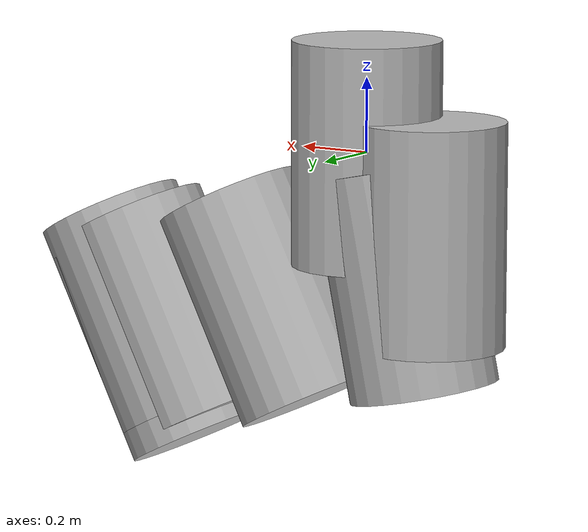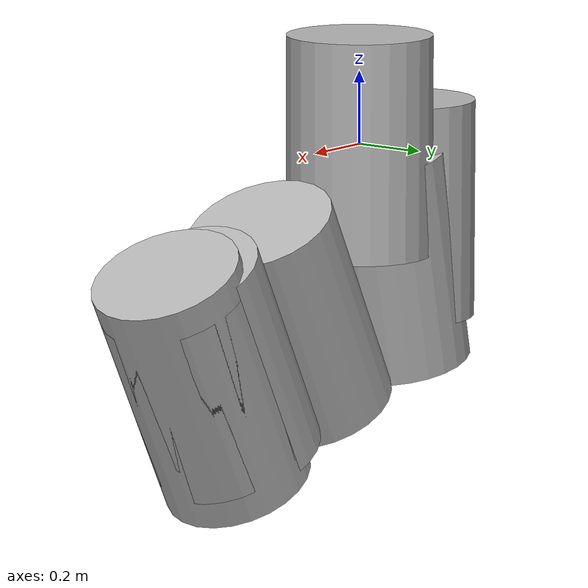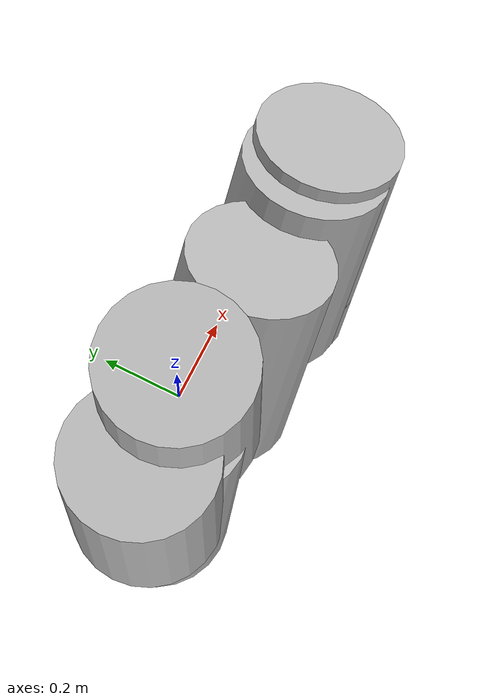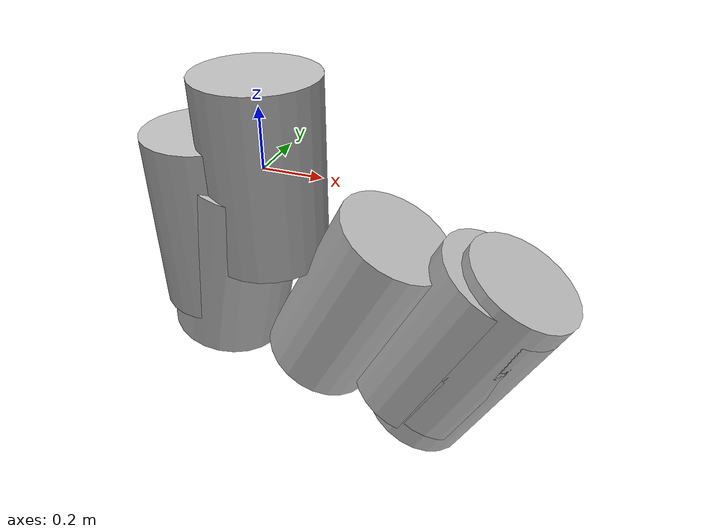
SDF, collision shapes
<sdf version='1.4'>
  <model name='girona500'>
    <link name='base_link'>
      <pose>0 0 0 0 -0 0</pose>
      <inertial>
        <pose>-0.1 0 -0.1 0 -0 0</pose>
        <mass>20</mass>
        <inertia>
          <ixx>1</ixx>
          <ixy>0</ixy>
          <ixz>-0.2</ixz>
          <iyy>1.2</iyy>
          <iyz>0</iyz>
          <izz>0.6</izz>
        </inertia>
      </inertial>
      <collision name='base_link_collision'>
        <pose>0 0 0 0 -0 0</pose>
        <geometry>
          <cylinder>
            <length>0.6</length>
            <radius>0.2</radius>
          </cylinder>
        </geometry>
        <surface>
          <contact>
            <ode/>
          </contact>
          <friction>
            <ode/>
          </friction>
        </surface>
      </collision>
      <collision name='base_link_collision_part0'>
        <pose>-0.2 0 -0.2 0 -0 0</pose>
        <geometry>
          <cylinder>
            <length>0.6</length>
            <radius>0.2</radius>
          </cylinder>
        </geometry>
        <surface>
          <contact>
            <ode/>
          </contact>
          <friction>
            <ode/>
          </friction>
        </surface>
        <surface>
          <contact>
            <ode/>
          </contact>
          <friction>
            <ode/>
          </friction>
        </surface>
      </collision>
      <visual name='base_link_visual'>
        <pose>0 0 0 1.57 -0 0</pose>
        <geometry>
          <mesh>
            <scale>1 1 1</scale>
            <uri>model://g500arm5_description/meshes/GIRONA500/g500.dae</uri>
          </mesh>
        </geometry>
      </visual>
      <visual name='base_link_visual_part0'>
        <pose>-0.2 0 -0.2 0 -0 0</pose>
        <geometry>
          <mesh>
            <scale>1 1 1</scale>
            <uri>model://g500arm5_description/meshes/ARM5E/ARM5E_part0.dae</uri>
          </mesh>
        </geometry>
      </visual>
      <velocity_decay>
        <linear>0</linear>
        <angular>0</angular>
      </velocity_decay>
      <gravity>0</gravity>

      <velocity_decay>
        <linear>0</linear>
        <angular>0</angular>
      </velocity_decay>
      <self_collide>0</self_collide>
      <gravity>0</gravity>
    </link>
    <link name='part1'>
      <pose>-0.2 0 -0.2 0 -0 0</pose>
      <inertial>
        <pose>0 0 0 0 -0 0</pose>
        <mass>10</mass>
        <inertia>
          <ixx>0.4</ixx>
          <ixy>0</ixy>
          <ixz>0</ixz>
          <iyy>0.4</iyy>
          <iyz>0</iyz>
          <izz>0.2</izz>
        </inertia>
      </inertial>
      <collision name='part1_collision'>
        <pose>0 0 0 0 -0 0</pose>
        <geometry>
          <cylinder>
            <length>0.6</length>
            <radius>0.2</radius>
          </cylinder>
        </geometry>
        <surface>
          <contact>
            <ode/>
          </contact>
          <friction>
            <ode/>
          </friction>
        </surface>
      </collision>
      <visual name='part1_visual'>
        <pose>0 0 0 0 -0 0</pose>
        <geometry>
          <mesh>
            <scale>1 1 1</scale>
            <uri>model://g500arm5_description/meshes/ARM5E/ARM5E_part1.dae</uri>
          </mesh>
        </geometry>
      </visual>

      <velocity_decay>
        <linear>0</linear>
        <angular>0</angular>
      </velocity_decay>
      <self_collide>0</self_collide>
      <gravity>0</gravity>
    </link>
    <joint name='part0_to_part1' type='revolute'>
      <child>part1</child>
      <parent>base_link</parent>
      <axis>
        <xyz>0 0 -1</xyz>
        <limit>
          <lower>-1e+16</lower>
          <upper>1e+16</upper>
        </limit>
        <dynamics/>
      </axis>
    </joint>
    <link name='part2'>
      <pose>-0.123 0 -0.33 0 0.209 0</pose>
      <inertial>
        <pose>0 0 0 0 -0 0</pose>
        <mass>10</mass>
        <inertia>
          <ixx>0.4</ixx>
          <ixy>0</ixy>
          <ixz>0</ixz>
          <iyy>0.4</iyy>
          <iyz>0</iyz>
          <izz>0.2</izz>
        </inertia>
      </inertial>
      <collision name='part2_collision'>
        <pose>0 0 0 0 -0 0</pose>
        <geometry>
          <cylinder>
            <length>0.6</length>
            <radius>0.2</radius>
          </cylinder>
        </geometry>
        <surface>
          <contact>
            <ode/>
          </contact>
          <friction>
            <ode/>
          </friction>
        </surface>
      </collision>
      <visual name='part2_visual'>
        <pose>0 0 0 0 -0.209 0</pose>
        <geometry>
          <mesh>
            <scale>1 1 1</scale>
            <uri>model://g500arm5_description/meshes/ARM5E/ARM5E_part2.dae</uri>
          </mesh>
        </geometry>
      </visual>

      <velocity_decay>
        <linear>0</linear>
        <angular>0</angular>
      </velocity_decay>
      <self_collide>0</self_collide>
      <gravity>0</gravity>
    </link>
    <joint name='part1_to_part2' type='revolute'>
      <child>part2</child>
      <parent>part1</parent>
      <axis>
        <xyz>0 1 0</xyz>
        <limit>
          <lower>-1e+16</lower>
          <upper>1e+16</upper>
        </limit>
        <dynamics/>
      </axis>
    </joint>
    <link name='part3'>
      <pose>0.310145 0 -0.421869 0 0.471 0</pose>
      <inertial>
        <pose>0 0 0 0 -0 0</pose>
        <mass>10</mass>
        <inertia>
          <ixx>0.4</ixx>
          <ixy>0</ixy>
          <ixz>0</ixz>
          <iyy>0.4</iyy>
          <iyz>0</iyz>
          <izz>0.2</izz>
        </inertia>
      </inertial>
      <collision name='part3_collision'>
        <pose>0 0 0 0 -0 0</pose>
        <geometry>
          <cylinder>
            <length>0.6</length>
            <radius>0.2</radius>
          </cylinder>
        </geometry>
        <surface>
          <contact>
            <ode/>
          </contact>
          <friction>
            <ode/>
          </friction>
        </surface>
      </collision>
      <visual name='part3_visual'>
        <pose>0 0 0 0 -0 0</pose>
        <geometry>
          <mesh>
            <scale>1 1 1</scale>
            <uri>model://g500arm5_description/meshes/ARM5E/ARM5E_part3.stl</uri>
          </mesh>
        </geometry>
      </visual>

      <velocity_decay>
        <linear>0</linear>
        <angular>0</angular>
      </velocity_decay>
      <self_collide>0</self_collide>
      <gravity>0</gravity>
    </link>
    <joint name='part2_to_part3' type='revolute'>
      <child>part3</child>
      <parent>part2</parent>
      <axis>
        <xyz>0 1 0</xyz>
        <limit>
          <lower>-1e+16</lower>
          <upper>1e+16</upper>
        </limit>
        <dynamics/>
      </axis>
    </joint>
    <link name='part4_base'>
      <pose>0.630242 0 -0.498462 0 0.471 0</pose>
      <inertial>
        <pose>0 0 0 0 -0 0</pose>
        <mass>10</mass>
        <inertia>
          <ixx>0.4</ixx>
          <ixy>0</ixy>
          <ixz>0</ixz>
          <iyy>0.4</iyy>
          <iyz>0</iyz>
          <izz>0.2</izz>
        </inertia>
      </inertial>
      <collision name='part4_base_collision'>
        <pose>0 0 0 0 -0 0</pose>
        <geometry>
          <cylinder>
            <length>0.6</length>
            <radius>0.2</radius>
          </cylinder>
        </geometry>
        <surface>
          <contact>
            <ode/>
          </contact>
          <friction>
            <ode/>
          </friction>
        </surface>
      </collision>
      <visual name='part4_base_visual'>
        <pose>0 0 0 0 -0 0</pose>
        <geometry>
          <mesh>
            <scale>1 1 1</scale>
            <uri>model://g500arm5_description/meshes/ARM5E/ARM5E_part4_base.dae</uri>
          </mesh>
        </geometry>
      </visual>

      <velocity_decay>
        <linear>0</linear>
        <angular>0</angular>
      </velocity_decay>
      <self_collide>0</self_collide>
      <gravity>0</gravity>
    </link>
    <joint name='part3_to_part4_base' type='revolute'>
      <child>part4_base</child>
      <parent>part3</parent>
      <axis>
        <xyz>0.891115 0 -0.453778</xyz>
        <limit>
          <lower>-1e+16</lower>
          <upper>1e+16</upper>
        </limit>
        <dynamics/>
      </axis>
    </joint>
    <link name='part4_jaw1'>
      <pose>0.710771 0 -0.494582 0 0.471 0</pose>
      <inertial>
        <pose>0 0 0 0 -0 0</pose>
        <mass>10</mass>
        <inertia>
          <ixx>0.4</ixx>
          <ixy>0</ixy>
          <ixz>0</ixz>
          <iyy>0.4</iyy>
          <iyz>0</iyz>
          <izz>0.2</izz>
        </inertia>
      </inertial>
      <collision name='part4_jaw1_collision'>
        <pose>0 0 0 0 -0 0</pose>
        <geometry>
          <cylinder>
            <length>0.6</length>
            <radius>0.2</radius>
          </cylinder>
        </geometry>
        <surface>
          <contact>
            <ode/>
          </contact>
          <friction>
            <ode/>
          </friction>
        </surface>
      </collision>
      <visual name='part4_jaw1_visual'>
        <pose>0 0 0 0 -0 0</pose>
        <geometry>
          <mesh>
            <scale>1 1 1</scale>
            <uri>model://g500arm5_description/meshes/ARM5E/ARM5E_part4_jaw1.dae</uri>
          </mesh>
        </geometry>
      </visual>

      <velocity_decay>
        <linear>0</linear>
        <angular>0</angular>
      </velocity_decay>
      <self_collide>0</self_collide>
      <gravity>0</gravity>
    </link>
    <joint name='part4_to_part4_jaw1' type='revolute'>
      <child>part4_jaw1</child>
      <parent>part4_base</parent>
      <axis>
        <xyz>0 -1 0</xyz>
        <limit>
          <lower>-1e+16</lower>
          <upper>1e+16</upper>
        </limit>
        <dynamics/>
      </axis>
    </joint>
    <link name='part4_jaw2'>
      <pose>0.674469 0 -0.565871 0 0.471 0</pose>
      <inertial>
        <pose>0 0 0 0 -0 0</pose>
        <mass>10</mass>
        <inertia>
          <ixx>0.4</ixx>
          <ixy>0</ixy>
          <ixz>0</ixz>
          <iyy>0.4</iyy>
          <iyz>0</iyz>
          <izz>0.2</izz>
        </inertia>
      </inertial>
      <collision name='part4_jaw2_collision'>
        <pose>0 0 0 0 -0 0</pose>
        <geometry>
          <cylinder>
            <length>0.6</length>
            <radius>0.2</radius>
          </cylinder>
        </geometry>
        <surface>
          <contact>
            <ode/>
          </contact>
          <friction>
            <ode/>
          </friction>
        </surface>
      </collision>
      <visual name='part4_jaw2_visual'>
        <pose>0 0 0 0 -0 0</pose>
        <geometry>
          <mesh>
            <scale>1 1 1</scale>
            <uri>model://g500arm5_description/meshes/ARM5E/ARM5E_part4_jaw2.dae</uri>
          </mesh>
        </geometry>
      </visual>

      <velocity_decay>
        <linear>0</linear>
        <angular>0</angular>
      </velocity_decay>
      <self_collide>0</self_collide>
      <gravity>0</gravity>
    </link>
    <joint name='part4_to_part4_jaw2' type='revolute'>
      <child>part4_jaw2</child>
      <parent>part4_base</parent>
      <axis>
        <xyz>0 1 0</xyz>
        <limit>
          <lower>-1e+16</lower>
          <upper>1e+16</upper>
        </limit>
        <dynamics/>
      </axis>
    </joint>
  </model>
</sdf>
